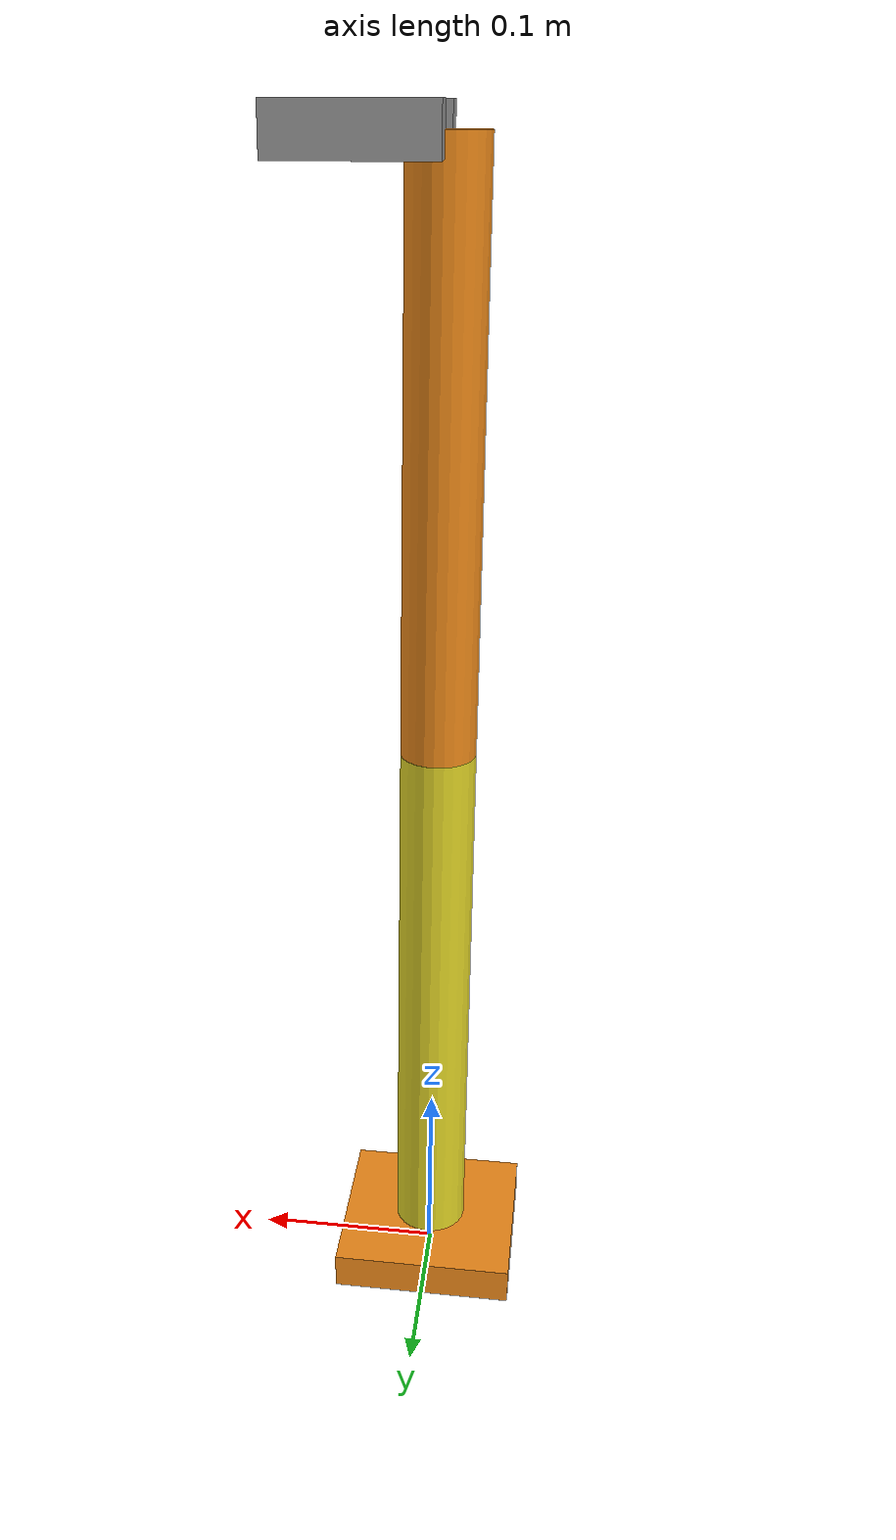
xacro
<?xml version="1.0"?>

<robot xmlns:xacro="http://www.ros.org/wiki/xacro">

    <link name="arm_base_link">
        <visual>
            <origin xyz="0 0 0.01" rpy="0 0 0"/>
            <geometry>
                <box size="0.1 0.1 0.02"/>
            </geometry>
            <material name="orange"/>
        </visual>
        <collision>
            <origin xyz="0 0 0" rpy="0 0 0"/>

            <geometry>
                <box size="0.1 0.1 0.02"/>
            </geometry>
        </collision>
        <inertial>

            <origin xyz="0 0 0" rpy="0 0 0"/>

            <mass value="0.5"/>

            <inertia
                ixx="0.001"
                ixy="0.0"
                ixz="0.0"
                iyy="0.001"
                iyz="0.0"
                izz="0.001"/>
        </inertial>
    </link>

    <link name="forearm_link">
        <visual>

            <origin xyz="0 0 0.15" rpy="0 0 0"/>
            <geometry>
                <cylinder radius="0.02" length="0.3"/>
            </geometry>
            <material name="yellow"/>
        </visual>
        <collision>

            <origin xyz="0 0 0.15"
                    rpy="0 0 0"/>

            <geometry>
                <cylinder radius="0.02" length="0.3" />
            </geometry>

        </collision>

        <inertial>

            <origin xyz="0 0 0.15"
                    rpy="0 0 0"/>

            <mass value="0.3"/>

            <inertia
                ixx="0.001"
                ixy="0.0"
                ixz="0.0"
                iyy="0.001"
                iyz="0.0"
                izz="0.001"/>
        </inertial>
    </link>

    <link name="left_finger_link">
        <visual>
            <origin xyz="0.04 0 0" rpy="0 0 0"/>
            <geometry>
                <box size="0.08 0.015 0.025"/>
            </geometry>
            <material name="gray"/>
        </visual>

        <collision>
            <origin xyz="0.04 0 0" rpy="0 0 0"/>
            <geometry>
                <box size="0.08 0.02 0.03"/>
            </geometry>
        </collision>

        <inertial>
            <origin xyz="0.04 0 0" rpy="0 0 0"/>
            <mass value="0.05"/>
            <inertia ixx="0.0001" ixy="0" ixz="0" iyy="0.0001" iyz="0" izz="0.0001"/>
        </inertial>
    </link>

    <link name="right_finger_link">
        <visual>
            <origin xyz="0.04 0 0" rpy="0 0 0"/>
            <geometry>
                <box size="0.08 0.015 0.025"/>
            </geometry>
            <material name="gray"/>
        </visual>

        <collision>
            <origin xyz="0.04 0 0" rpy="0 0 0"/>
            <geometry>
                <box size="0.08 0.02 0.03"/>
            </geometry>
        </collision>

        <inertial>
            <origin xyz="0.04 0 0" rpy="0 0 0"/>
            <mass value="0.05"/>
            <inertia ixx="0.0001" ixy="0" ixz="0" iyy="0.0001" iyz="0" izz="0.0001"/>
        </inertial>
    </link>

    <link name="hand_link">
        <visual>
            <origin xyz="0 0 0.15" rpy="0 0 0"/>
            <geometry>
                <cylinder radius="0.02" length="0.3"/>
            </geometry>
            <material name="orange"/>
        </visual>

        <collision>

            <origin xyz="0 0 0.15"
                    rpy="0 0 0"/>

            <geometry>
                <cylinder radius="0.02" length="0.3"/>
            </geometry>

        </collision>

        <inertial>

            <origin xyz="0 0 0.15"
                    rpy="0 0 0"/>

            <mass value="0.3"/>

            <inertia
                ixx="0.001"
                ixy="0.0"
                ixz="0.0"
                iyy="0.001"
                iyz="0.0"
                izz="0.001"/>
        </inertial>
    </link>

    <joint name="base_to_forearm_joint" type="revolute">
        <parent link="arm_base_link"/>
        <child link="forearm_link"/>

        <origin xyz="0 0 0.02" rpy="0 0 0"/>

        <axis xyz="0 1 0"/>

        <limit lower="0" upper="1.57"
               effort="10" velocity="1"/>
        <dynamics
            damping="3.0"
            friction="0.5"/>
    </joint>

    <joint name="forearm_to_hand_joint" type="revolute">
        <parent link="forearm_link"/>
        <child link="hand_link"/>

        <origin xyz="0 0 0.3" rpy="0 0 0"/>

        <axis xyz="0 1 0"/>

        <limit lower="0" upper="1.57"
               effort="10" velocity="1"/>
        <dynamics
            damping="3.0"
            friction="0.5"/>
    </joint>

    <joint name="left_finger_joint"
           type="revolute">

        <parent link="hand_link"/>

        <child link="left_finger_link"/>

        <origin xyz="0 0.025 0.3"
                rpy="0 0 0"/>

        <axis xyz="0 0 1"/>

        <limit
            lower="0"
            upper="0.6"
            effort="20"
            velocity="1.0"/>
        <dynamics damping="2.0" friction="0.5"/>

    </joint>

    <joint name="right_finger_joint"
           type="revolute">

        <parent link="hand_link"/>

        <child link="right_finger_link"/>

        <origin xyz="0 -0.025 0.3"
                rpy="0 0 0"/>

        <axis xyz="0 0 -1"/>
        <limit
            lower="0"
            upper="0.6"
            effort="20"
            velocity="1.0"/>
        <dynamics damping="2.0" friction="0.5"/>

    </joint>

</robot>
